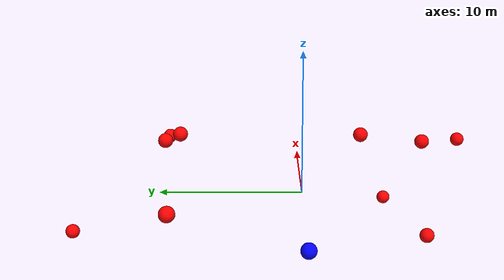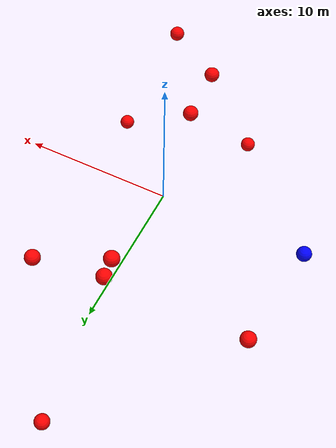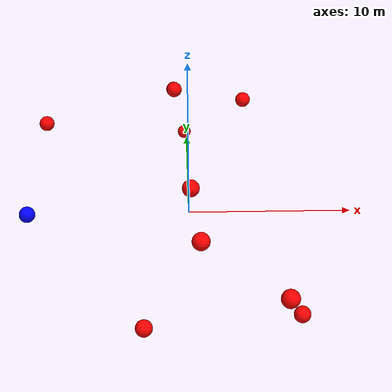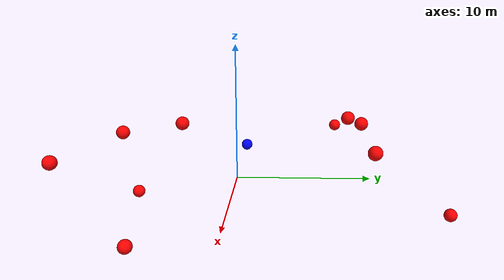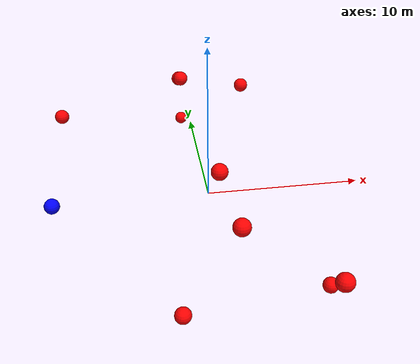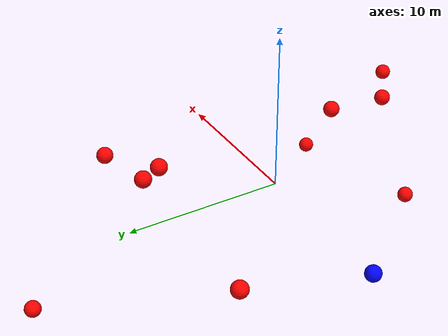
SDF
<?xml version="1.0" ?>
<sdf version="1.8">
    <world name="3d_world">
        <physics name="1ms" type="ode">
            <max_step_size>0.001</max_step_size>
            <real_time_factor>1.0</real_time_factor>
            <real_time_update_rate>1000.0</real_time_update_rate>
        </physics>
        <gravity>0 0 0</gravity>

        <plugin
            filename="gz-sim-physics-system"
            name="gz::sim::v8::systems::Physics">
        </plugin>
        <plugin
            filename="libignition-gazebo-user-commands-system.so"
            name="ignition::gazebo::systems::UserCommands">
        </plugin>
        <plugin
            filename="gz-sim-scene-broadcaster-system"
            name="gz::sim::systems::SceneBroadcaster">
        </plugin>
        <plugin
            filename="gz-sim-sensors-system"
            name="gz::sim::systems::Sensors">
            <render_engine>ogre2</render_engine>
        </plugin>

        <light type="directional" name="sun">
            <cast_shadows>true</cast_shadows>
            <pose>0 0 10 0 0 0</pose>
            <diffuse>0.8 0.8 0.8 1</diffuse>
            <specular>0.2 0.2 0.2 1</specular>
            <attenuation>
                <range>1000</range>
                <constant>0.9</constant>
                <linear>0.01</linear>
                <quadratic>0.001</quadratic>
            </attenuation>
            <direction>-0.5 0.1 -0.9</direction>
        </light>

        <!-- AGENTE -->
        <model name='agente' canonical_link='chassis'>
            <pose relative_to='world'>-10.0 0 0.0 0 0 0</pose>
            <link name='chassis'>
                <pose relative_to='__model__'>0.0 0 0.0 0 0 0</pose>
                <inertial>
                    <mass>1.14395</mass>
                    <inertia>
                        <ixx>0.095329</ixx>
                        <ixy>0</ixy>
                        <ixz>0</ixz>
                        <iyy>0.381317</iyy>
                        <iyz>0</iyz>
                        <izz>0.476646</izz>
                    </inertia>
                </inertial>
                <visual name='visual'>
                    <geometry>
                        <sphere>
                            <radius>0.5</radius>
                        </sphere>
                    </geometry>
                    <material>
                        <ambient>0.0 0.0 1.0 1</ambient>
                        <diffuse>0.0 0.0 1.0 1</diffuse>
                        <specular>0.0 0.0 1.0 1</specular>
                    </material>
                </visual>
                <collision name='collision'>
                    <geometry>
                        <sphere>
                            <radius>0.5</radius>
                        </sphere>
                    </geometry>
                </collision>
                <enable_gravity>false</enable_gravity>
            </link>

            <link name='lidar_link'>
                <pose relative_to='chassis'>0.0 0 0.1 0 0 0</pose>
                <inertial>
                    <mass>0.1</mass>
                    <inertia>
                        <ixx>0.000166667</ixx>
                        <iyy>0.000166667</iyy>
                        <izz>0.000166667</izz>
                    </inertia>
                </inertial>
                <collision name='collision'>
                    <geometry>
                        <cylinder>
                            <radius>0.05</radius>
                            <length>0.1</length>
                        </cylinder>
                    </geometry>
                </collision>
                <visual name='visual'>
                    <geometry>
                        <cylinder>
                            <radius>0.05</radius>
                            <length>0.1</length>
                        </cylinder>
                    </geometry>
                    <material>
                        <ambient>0.0 1.0 0.0 1</ambient>
                        <diffuse>0.0 1.0 0.0 1</diffuse>
                        <specular>0.0 1.0 0.0 1</specular>
                    </material>
                </visual>
                <sensor name="lidar" type="gpu_lidar">
                    <topic>scan</topic>
                    <update_rate>10</update_rate>
                    <lidar>
                        <scan>
                            <horizontal>
                                <samples>5000</samples>
                                <resolution>1</resolution>
                                <min_angle>-3.14159</min_angle>
                                <max_angle>3.14159</max_angle>
                            </horizontal>
                        </scan>
                        <range>
                            <min>0.1</min>
                            <max>10.0</max>
                            <resolution>0.01</resolution>
                        </range>
                    </lidar>
                    <visualize>true</visualize>
                    <always_on>true</always_on>
                    <update_rate>10</update_rate>
                    <pose_frame>lidar</pose_frame>
                </sensor>
                <enable_gravity>false</enable_gravity>
            </link>

            <joint name="lidar_joint" type="fixed">
                <parent>chassis</parent>
                <child>lidar_link</child>
            </joint>

            <plugin
                filename="ignition-gazebo-joint-state-publisher-system"
                name="ignition::gazebo::systems::JointStatePublisher">
            </plugin>
            <plugin
                filename="ignition-gazebo-odometry-publisher-system"
                name="ignition::gazebo::systems::OdometryPublisher">
                <dimensions>3</dimensions>
            </plugin>
            <plugin
                filename="ignition-gazebo-velocity-control-system"
                name="ignition::gazebo::systems::VelocityControl">
                <initial_linear>0.0 0 0</initial_linear>
                <initial_angular>0 0 0.0</initial_angular>
            </plugin>
            <plugin
                filename="libignition-gazebo-pose-publisher-system.so"
                name="ignition::gazebo::systems::PosePublisher">
                <topic>/agente/pose</topic>
                <frame_id>agente</frame_id>
                <update_rate>30</update_rate>
            </plugin>
        </model>

        <!-- OBSTACLE 1 -->
        <model name='obstacle_1' canonical_link='obstacle'>
            <static>false</static>
            <pose relative_to='world'>0.09 -4.02 4.19 0 0 0</pose>
            <link name='obstacle'>
                <pose relative_to='__model__'>0.0 0 0.0 0 0 0</pose>
                <visual name='visual'>
                    <geometry>
                        <sphere>
                            <radius>0.50</radius>
                        </sphere>
                    </geometry>
                    <material>
                        <ambient>1.0 0.0 0.0 1</ambient>
                        <diffuse>1.0 0.0 0.0 1</diffuse>
                        <specular>1.0 0.0 0.0 1</specular>
                    </material>
                </visual>
                <collision name='collision'>
                    <geometry>
                        <sphere>
                            <radius>0.50</radius>
                        </sphere>
                    </geometry>
                </collision>
                <enable_gravity>false</enable_gravity>
            </link>

            <plugin
                filename="ignition-gazebo-velocity-control-system"
                name="ignition::gazebo::systems::VelocityControl">
                <initial_linear>-0.18 1.07 -1.12</initial_linear>
                <initial_angular>0 0 0</initial_angular>
            </plugin>

            <plugin
                filename="ignition-gazebo-odometry-publisher-system"
                name="ignition::gazebo::systems::OdometryPublisher">
                <dimensions>3</dimensions>
            </plugin>
        </model>

        <!-- OBSTACLE 2 -->
        <model name='obstacle_2' canonical_link='obstacle'>
            <static>false</static>
            <pose relative_to='world'>-0.15 16.30 -2.87 0 0 0</pose>
            <link name='obstacle'>
                <pose relative_to='__model__'>0.0 0 0.0 0 0 0</pose>
                <visual name='visual'>
                    <geometry>
                        <sphere>
                            <radius>0.50</radius>
                        </sphere>
                    </geometry>
                    <material>
                        <ambient>1.0 0.0 0.0 1</ambient>
                        <diffuse>1.0 0.0 0.0 1</diffuse>
                        <specular>1.0 0.0 0.0 1</specular>
                    </material>
                </visual>
                <collision name='collision'>
                    <geometry>
                        <sphere>
                            <radius>0.50</radius>
                        </sphere>
                    </geometry>
                </collision>
                <enable_gravity>false</enable_gravity>
            </link>

            <plugin
                filename="ignition-gazebo-velocity-control-system"
                name="ignition::gazebo::systems::VelocityControl">
                <initial_linear>0.06 -1.97 0.35</initial_linear>
                <initial_angular>0 0 0</initial_angular>
            </plugin>

            <plugin
                filename="ignition-gazebo-odometry-publisher-system"
                name="ignition::gazebo::systems::OdometryPublisher">
                <dimensions>3</dimensions>
            </plugin>
        </model>

        <!-- OBSTACLE 3 -->
        <model name='obstacle_3' canonical_link='obstacle'>
            <static>false</static>
            <pose relative_to='world'>6.44 -6.77 -2.71 0 0 0</pose>
            <link name='obstacle'>
                <pose relative_to='__model__'>0.0 0 0.0 0 0 0</pose>
                <visual name='visual'>
                    <geometry>
                        <sphere>
                            <radius>0.50</radius>
                        </sphere>
                    </geometry>
                    <material>
                        <ambient>1.0 0.0 0.0 1</ambient>
                        <diffuse>1.0 0.0 0.0 1</diffuse>
                        <specular>1.0 0.0 0.0 1</specular>
                    </material>
                </visual>
                <collision name='collision'>
                    <geometry>
                        <sphere>
                            <radius>0.50</radius>
                        </sphere>
                    </geometry>
                </collision>
                <enable_gravity>false</enable_gravity>
            </link>

            <plugin
                filename="ignition-gazebo-velocity-control-system"
                name="ignition::gazebo::systems::VelocityControl">
                <initial_linear>-1.27 1.43 0.57</initial_linear>
                <initial_angular>0 0 0</initial_angular>
            </plugin>

            <plugin
                filename="ignition-gazebo-odometry-publisher-system"
                name="ignition::gazebo::systems::OdometryPublisher">
                <dimensions>3</dimensions>
            </plugin>
        </model>

        <!-- OBSTACLE 4 -->
        <model name='obstacle_4' canonical_link='obstacle'>
            <static>false</static>
            <pose relative_to='world'>-2.62 -8.44 -2.18 0 0 0</pose>
            <link name='obstacle'>
                <pose relative_to='__model__'>0.0 0 0.0 0 0 0</pose>
                <visual name='visual'>
                    <geometry>
                        <sphere>
                            <radius>0.50</radius>
                        </sphere>
                    </geometry>
                    <material>
                        <ambient>1.0 0.0 0.0 1</ambient>
                        <diffuse>1.0 0.0 0.0 1</diffuse>
                        <specular>1.0 0.0 0.0 1</specular>
                    </material>
                </visual>
                <collision name='collision'>
                    <geometry>
                        <sphere>
                            <radius>0.50</radius>
                        </sphere>
                    </geometry>
                </collision>
                <enable_gravity>false</enable_gravity>
            </link>

            <plugin
                filename="ignition-gazebo-velocity-control-system"
                name="ignition::gazebo::systems::VelocityControl">
                <initial_linear>1.43 1.22 0.32</initial_linear>
                <initial_angular>0 0 0</initial_angular>
            </plugin>

            <plugin
                filename="ignition-gazebo-odometry-publisher-system"
                name="ignition::gazebo::systems::OdometryPublisher">
                <dimensions>3</dimensions>
            </plugin>
        </model>

        <!-- OBSTACLE 5 -->
        <model name='obstacle_5' canonical_link='obstacle'>
            <static>false</static>
            <pose relative_to='world'>4.95 -11.96 2.48 0 0 0</pose>
            <link name='obstacle'>
                <pose relative_to='__model__'>0.0 0 0.0 0 0 0</pose>
                <visual name='visual'>
                    <geometry>
                        <sphere>
                            <radius>0.50</radius>
                        </sphere>
                    </geometry>
                    <material>
                        <ambient>1.0 0.0 0.0 1</ambient>
                        <diffuse>1.0 0.0 0.0 1</diffuse>
                        <specular>1.0 0.0 0.0 1</specular>
                    </material>
                </visual>
                <collision name='collision'>
                    <geometry>
                        <sphere>
                            <radius>0.50</radius>
                        </sphere>
                    </geometry>
                </collision>
                <enable_gravity>false</enable_gravity>
            </link>

            <plugin
                filename="ignition-gazebo-velocity-control-system"
                name="ignition::gazebo::systems::VelocityControl">
                <initial_linear>-0.17 1.95 -0.40</initial_linear>
                <initial_angular>0 0 0</initial_angular>
            </plugin>

            <plugin
                filename="ignition-gazebo-odometry-publisher-system"
                name="ignition::gazebo::systems::OdometryPublisher">
                <dimensions>3</dimensions>
            </plugin>
        </model>

        <!-- OBSTACLE 6 -->
        <model name='obstacle_6' canonical_link='obstacle'>
            <static>false</static>
            <pose relative_to='world'>-0.88 9.33 4.06 0 0 0</pose>
            <link name='obstacle'>
                <pose relative_to='__model__'>0.0 0 0.0 0 0 0</pose>
                <visual name='visual'>
                    <geometry>
                        <sphere>
                            <radius>0.50</radius>
                        </sphere>
                    </geometry>
                    <material>
                        <ambient>1.0 0.0 0.0 1</ambient>
                        <diffuse>1.0 0.0 0.0 1</diffuse>
                        <specular>1.0 0.0 0.0 1</specular>
                    </material>
                </visual>
                <collision name='collision'>
                    <geometry>
                        <sphere>
                            <radius>0.50</radius>
                        </sphere>
                    </geometry>
                </collision>
                <enable_gravity>false</enable_gravity>
            </link>

            <plugin
                filename="ignition-gazebo-velocity-control-system"
                name="ignition::gazebo::systems::VelocityControl">
                <initial_linear>-0.34 -1.81 -0.79</initial_linear>
                <initial_angular>0 0 0</initial_angular>
            </plugin>

            <plugin
                filename="ignition-gazebo-odometry-publisher-system"
                name="ignition::gazebo::systems::OdometryPublisher">
                <dimensions>3</dimensions>
            </plugin>
        </model>

        <!-- OBSTACLE 7 -->
        <model name='obstacle_7' canonical_link='obstacle'>
            <static>false</static>
            <pose relative_to='world'>-0.83 8.31 4.50 0 0 0</pose>
            <link name='obstacle'>
                <pose relative_to='__model__'>0.0 0 0.0 0 0 0</pose>
                <visual name='visual'>
                    <geometry>
                        <sphere>
                            <radius>0.50</radius>
                        </sphere>
                    </geometry>
                    <material>
                        <ambient>1.0 0.0 0.0 1</ambient>
                        <diffuse>1.0 0.0 0.0 1</diffuse>
                        <specular>1.0 0.0 0.0 1</specular>
                    </material>
                </visual>
                <collision name='collision'>
                    <geometry>
                        <sphere>
                            <radius>0.50</radius>
                        </sphere>
                    </geometry>
                </collision>
                <enable_gravity>false</enable_gravity>
            </link>

            <plugin
                filename="ignition-gazebo-velocity-control-system"
                name="ignition::gazebo::systems::VelocityControl">
                <initial_linear>0.16 -1.75 -0.95</initial_linear>
                <initial_angular>0 0 0</initial_angular>
            </plugin>

            <plugin
                filename="ignition-gazebo-odometry-publisher-system"
                name="ignition::gazebo::systems::OdometryPublisher">
                <dimensions>3</dimensions>
            </plugin>
        </model>

        <!-- OBSTACLE 8 -->
        <model name='obstacle_8' canonical_link='obstacle'>
            <static>false</static>
            <pose relative_to='world'>-9.54 8.23 2.09 0 0 0</pose>
            <link name='obstacle'>
                <pose relative_to='__model__'>0.0 0 0.0 0 0 0</pose>
                <visual name='visual'>
                    <geometry>
                        <sphere>
                            <radius>0.50</radius>
                        </sphere>
                    </geometry>
                    <material>
                        <ambient>1.0 0.0 0.0 1</ambient>
                        <diffuse>1.0 0.0 0.0 1</diffuse>
                        <specular>1.0 0.0 0.0 1</specular>
                    </material>
                </visual>
                <collision name='collision'>
                    <geometry>
                        <sphere>
                            <radius>0.50</radius>
                        </sphere>
                    </geometry>
                </collision>
                <enable_gravity>false</enable_gravity>
            </link>

            <plugin
                filename="ignition-gazebo-velocity-control-system"
                name="ignition::gazebo::systems::VelocityControl">
                <initial_linear>0.99 -1.68 -0.43</initial_linear>
                <initial_angular>0 0 0</initial_angular>
            </plugin>

            <plugin
                filename="ignition-gazebo-odometry-publisher-system"
                name="ignition::gazebo::systems::OdometryPublisher">
                <dimensions>3</dimensions>
            </plugin>
        </model>

        <!-- OBSTACLE 9 -->
        <model name='obstacle_9' canonical_link='obstacle'>
            <static>false</static>
            <pose relative_to='world'>3.88 9.61 3.08 0 0 0</pose>
            <link name='obstacle'>
                <pose relative_to='__model__'>0.0 0 0.0 0 0 0</pose>
                <visual name='visual'>
                    <geometry>
                        <sphere>
                            <radius>0.50</radius>
                        </sphere>
                    </geometry>
                    <material>
                        <ambient>1.0 0.0 0.0 1</ambient>
                        <diffuse>1.0 0.0 0.0 1</diffuse>
                        <specular>1.0 0.0 0.0 1</specular>
                    </material>
                </visual>
                <collision name='collision'>
                    <geometry>
                        <sphere>
                            <radius>0.50</radius>
                        </sphere>
                    </geometry>
                </collision>
                <enable_gravity>false</enable_gravity>
            </link>

            <plugin
                filename="ignition-gazebo-velocity-control-system"
                name="ignition::gazebo::systems::VelocityControl">
                <initial_linear>-0.62 -1.81 -0.58</initial_linear>
                <initial_angular>0 0 0</initial_angular>
            </plugin>

            <plugin
                filename="ignition-gazebo-odometry-publisher-system"
                name="ignition::gazebo::systems::OdometryPublisher">
                <dimensions>3</dimensions>
            </plugin>
        </model>

        <!-- OBSTACLE 10 -->
        <model name='obstacle_10' canonical_link='obstacle'>
            <static>false</static>
            <pose relative_to='world'>0.56 -8.38 3.56 0 0 0</pose>
            <link name='obstacle'>
                <pose relative_to='__model__'>0.0 0 0.0 0 0 0</pose>
                <visual name='visual'>
                    <geometry>
                        <sphere>
                            <radius>0.50</radius>
                        </sphere>
                    </geometry>
                    <material>
                        <ambient>1.0 0.0 0.0 1</ambient>
                        <diffuse>1.0 0.0 0.0 1</diffuse>
                        <specular>1.0 0.0 0.0 1</specular>
                    </material>
                </visual>
                <collision name='collision'>
                    <geometry>
                        <sphere>
                            <radius>0.50</radius>
                        </sphere>
                    </geometry>
                </collision>
                <enable_gravity>false</enable_gravity>
            </link>

            <plugin
                filename="ignition-gazebo-velocity-control-system"
                name="ignition::gazebo::systems::VelocityControl">
                <initial_linear>0.68 1.44 -0.61</initial_linear>
                <initial_angular>0 0 0</initial_angular>
            </plugin>

            <plugin
                filename="ignition-gazebo-odometry-publisher-system"
                name="ignition::gazebo::systems::OdometryPublisher">
                <dimensions>3</dimensions>
            </plugin>
        </model>

    </world>
</sdf>
